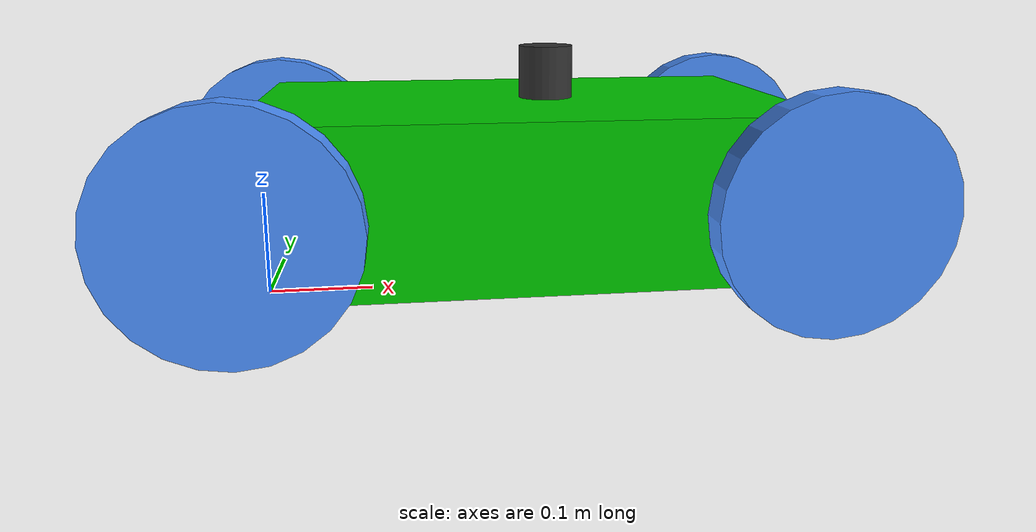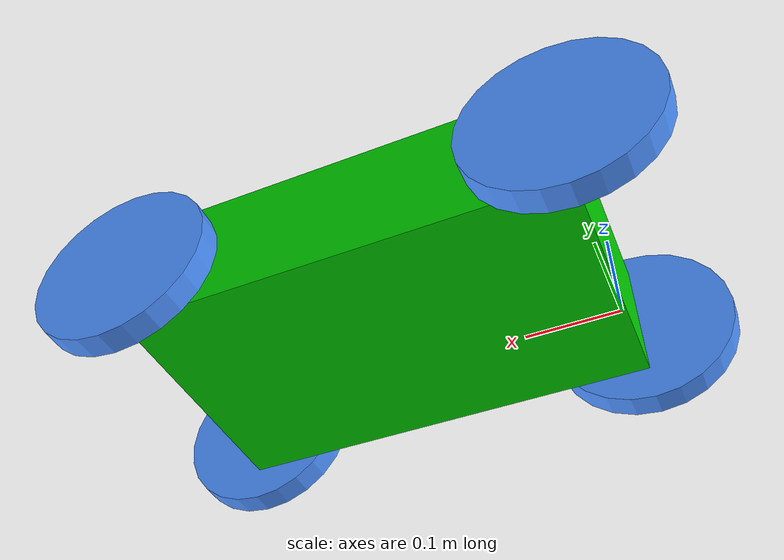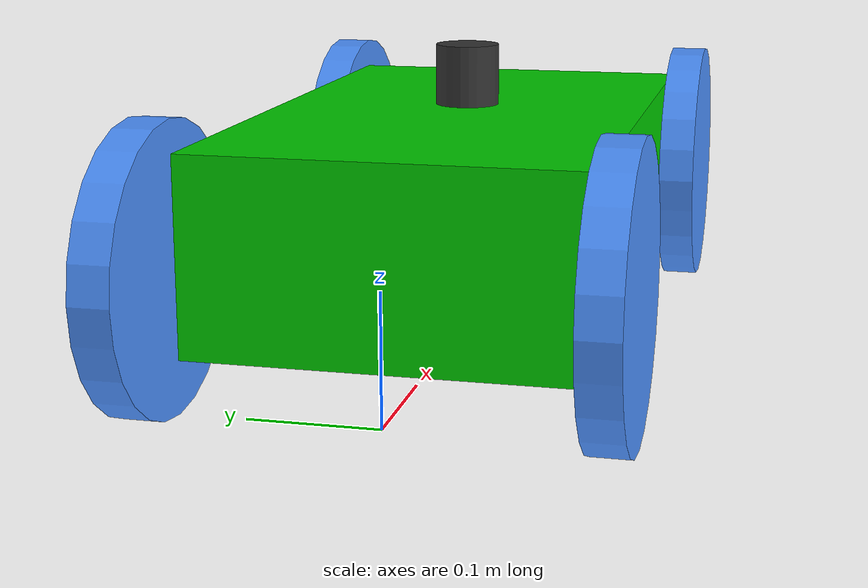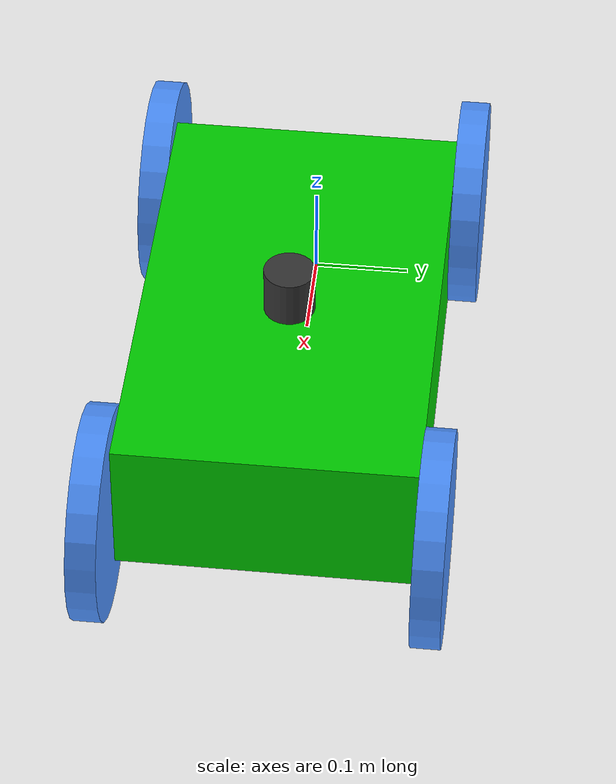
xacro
<?xml version="1.0"?>

<robot xmlns:xacro="http://www.ros.org/wiki/xacro" name="vehicle">

  <xacro:property name="wheelbase" value="0.5" />
  <xacro:property name="width" value="0.3" />
  <xacro:property name="height" value="0.15" />
  <xacro:property name="ground_offset" value="0.04" />
  <xacro:property name="wheel_radius" value="0.1075" />
  <xacro:property name="wheel_length" value="0.03" />
  <xacro:property name="laser_distance_from_base_link" value="0.275" />
  <xacro:property name="laser_height" value="0.05" />
  <xacro:property name="laser_radius" value="0.026" />

  <material name="black">
    <color rgba="0.2 0.2 0.2 1."/>
  </material>

  <material name="blue">
    <color rgba="0.3 0.57 1. 1."/>
  </material>

  <material name="green">
    <color rgba="0.0 0.8 0.0 1.0"/>
  </material>

  <material name="grey">
    <color rgba="0.2 0.2 0.2 1.0"/>
  </material>

  <link name="base_link">

    <inertial>
      <mass value="10.0"/>
      <inertia ixx="0.09375" ixy="0.0" ixz="0.0" iyy="0.22708333" iyz="0.0" izz="0.283333"/>
    </inertial>
    <visual>
      <origin xyz="${wheelbase/2} 0 ${ground_offset+height/2}"/>
      <geometry>
        <box size="${wheelbase} ${width} ${height}"/>
      </geometry>
      <material name="green"/>
    </visual>
    <collision>
      <origin xyz="${wheelbase/2} 0 ${ground_offset+height/2}"/>
      <geometry>
        <box size="${wheelbase} ${width} ${height}"/>
      </geometry>
      <material name="green"/>
    </collision>
  </link>

  <joint name="base_to_laser_model" type="fixed">
    <parent link="base_link"/>
    <child link="laser_model"/>
    <origin xyz="${laser_distance_from_base_link} 0 ${ground_offset+height+(laser_height/2)}"/>
  </joint>

  <link name="laser_model">

    <inertial>
      <mass value="2.0" />

      <inertia ixx="3.77e-4" ixy="0.0" ixz="0.0" iyy="3.77e-4" iyz="0.0" izz="6.76e-4" />
    </inertial>
    <visual>
      <geometry>
        <cylinder radius="${laser_radius}" length="${laser_height}"/>
      </geometry>
      <material name="black"/>
    </visual>
    <collision>
      <geometry>
        <cylinder radius="${laser_radius}" length="${laser_height}"/>
      </geometry>
      <material name="black"/>
    </collision>
  </link>

  <joint name="base_to_back_left_wheel" type="fixed">
    <parent link="base_link"/>
    <child link="back_left_wheel"/>
    <origin xyz="0 ${(wheel_length+width)/2} ${wheel_radius}"/>
  </joint>

  <link name="back_left_wheel">

    <inertial>
      <mass value="3.0"/>
      <inertia ixx="0.002964" ixy="0.0" ixz="0.0" iyy="0.002964" iyz="0.0" izz="0.0173343"/>
    </inertial>
    <visual>
      <geometry>
        <cylinder radius="${wheel_radius}" length="${wheel_length}"/>
      </geometry>
      <material name="blue"/>
      <origin rpy="${pi/2} 0 0"/>
    </visual>
    <collision>
      <geometry>
        <cylinder radius="${wheel_radius}" length="${wheel_length}"/>
      </geometry>
      <material name="blue"/>
      <origin rpy="${pi/2} 0 0"/>

    </collision>
  </link>

  <joint name="base_to_back_right_wheel" type="fixed">
    <parent link="base_link"/>
    <child link="back_right_wheel"/>
    <origin xyz="0 ${-(wheel_length+width)/2} ${wheel_radius}"/>
  </joint>

  <link name="back_right_wheel">

    <inertial>
      <mass value="3.0"/>
      <inertia ixx="0.002964" ixy="0.0" ixz="0.0" iyy="0.002964" iyz="0.0" izz="0.0173343"/>
    </inertial>
    <visual>
      <geometry>
        <cylinder radius="${wheel_radius}" length="${wheel_length}"/>
      </geometry>
      <material name="blue"/>
      <origin rpy="${pi/2} 0 0"/>
    </visual>
    <collision>
      <geometry>
        <cylinder radius="${wheel_radius}" length="${wheel_length}"/>
      </geometry>
      <material name="blue"/>
      <origin rpy="${pi/2} 0 0"/>
    </collision>
  </link>

  <joint name="base_to_front_left_hinge" type="continuous">
    <parent link="base_link"/>
    <child link="front_left_wheel"/>
    <origin xyz="${wheelbase} ${(wheel_length+width)/2} ${wheel_radius}"/>
  </joint>
  <link name="front_left_wheel">

    <inertial>
      <mass value="3.0"/>
      <inertia ixx="0.002964" ixy="0.0" ixz="0.0" iyy="0.002964" iyz="0.0" izz="0.0173343"/>
    </inertial>
    <visual>
      <geometry>
        <cylinder radius="${wheel_radius}" length="${wheel_length}"/>
      </geometry>
      <material name="blue"/>
      <origin rpy="${pi/2} 0 0"/>
    </visual>
    <collision>
      <geometry>
        <cylinder radius="${wheel_radius}" length="${wheel_length}"/>
      </geometry>
      <material name="blue"/>
      <origin rpy="${pi/2} 0 0"/>
    </collision>
  </link>

  <joint name="base_to_front_right_hinge" type="continuous">
    <parent link="base_link"/>
    <child link="front_right_wheel"/>
    <origin xyz="${wheelbase} ${-(wheel_length+width)/2} ${wheel_radius}"/>
  </joint>
  <link name="front_right_wheel">

    <inertial>
      <mass value="3.0"/>
      <inertia ixx="0.002964" ixy="0.0" ixz="0.0" iyy="0.002964" iyz="0.0" izz="0.0173343"/>
    </inertial>
    <visual>
      <geometry>
        <cylinder radius="${wheel_radius}" length="${wheel_length}"/>
      </geometry>
      <material name="blue"/>
      <origin rpy="${pi/2} 0 0"/>
    </visual>
    <collision>
      <geometry>
        <cylinder radius="${wheel_radius}" length="${wheel_length}"/>
      </geometry>
      <material name="blue"/>
      <origin rpy="${pi/2} 0 0"/>
    </collision>
  </link>

  <gazebo reference="laser_model">
    <sensor name="head_lidar_sensor" type="ray">
      <pose>0 0 0 0 0 0</pose>
      <visualize>true</visualize>
      <update_rate>25</update_rate> <!-- choosen for SICK LMS111-->
      <ray>
        <scan>
          <horizontal>
            <samples>720</samples>
            <resolution>1</resolution>
            <min_angle>-2.35619</min_angle>
            <max_angle>2.35619</max_angle>
          </horizontal>
        </scan>
        <range>
          <min>0.5</min>
          <max>20.0</max>
          <resolution>0.001</resolution>
        </range>
      </ray>
      <plugin filename="libgazebo_ros_laser.so" name="gazebo_ros_head_hokuyo_controller">
        <topicName>scan</topicName>
        <frameName>laser_model</frameName>
      </plugin>
    </sensor>
  </gazebo>
  <gazebo>
    <plugin name="differential_drive_controller" filename="libgazebo_ros_diff_drive.so">
      <leftJoint>base_to_front_left_hinge</leftJoint>
      <odometryTopic>odom</odometryTopic>
      <odometryFrame>odom</odometryFrame>
      <publishWheelTF>false</publishWheelTF>
      <publishOdomTF>true</publishOdomTF>
      <wheelTorque>5</wheelTorque>
      <wheelAcceleration>0</wheelAcceleration>
      <updateRate>100</updateRate>
      <odometrySource>world</odometrySource>  <!-- 'encoder' instead of 'world' is also possible -->

      <publishTf>1</publishTf>
      <rosDebugLevel>na</rosDebugLevel>
      <rightJoint>base_to_front_right_hinge</rightJoint>
      <robotBaseFrame>base_link</robotBaseFrame>
      <wheelSeparation>0.0889</wheelSeparation>
      <wheelDiameter>0.1016</wheelDiameter>
      <publishWheelJointState>true</publishWheelJointState>
      <commandTopic>cmd_vel</commandTopic>
      <robotBaseFrame>base_link</robotBaseFrame>
    </plugin>
  </gazebo>

</robot>
